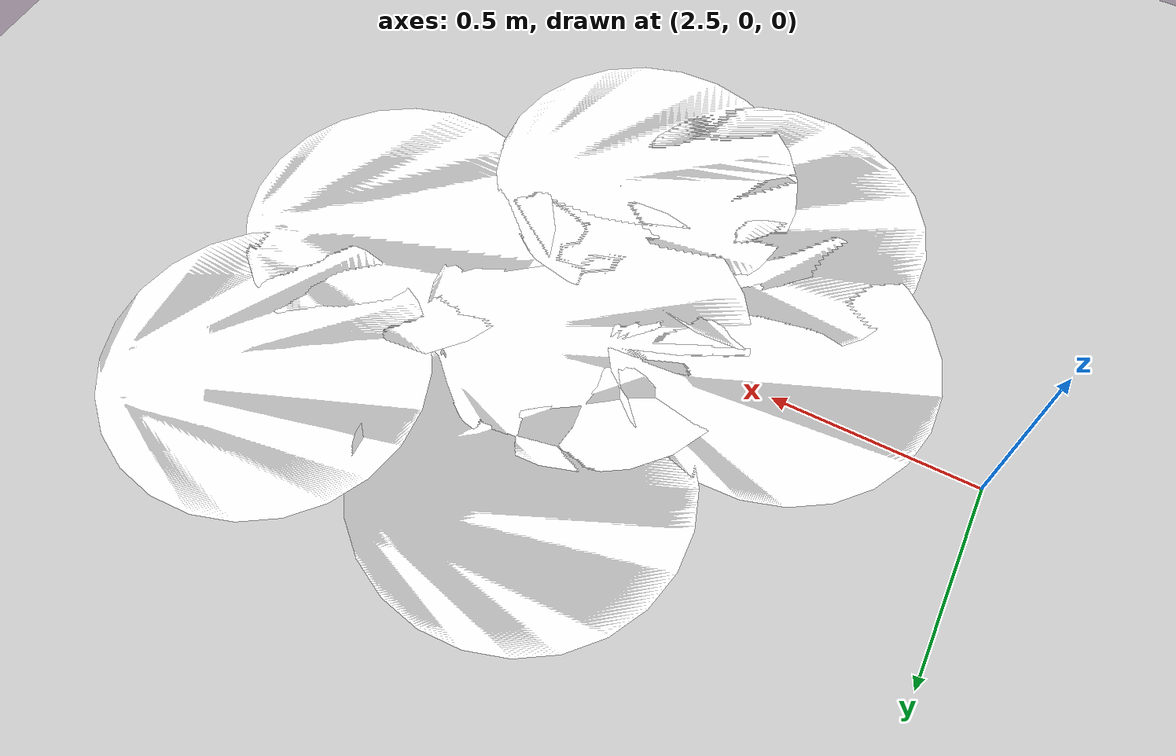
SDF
<sdf version="1.4">
 <world name="default">
  <light name="sun" type="directional">
   <pose>0 0 10 0 -0 0</pose>
   <diffuse>0.8 0.8 0.8 1</diffuse>
   <specular>0.2 0.2 0.2 1</specular>
   <attenuation>
    <range>1000</range>
    <constant>0.9</constant>
    <linear>0.01</linear>
    <quadratic>0.001</quadratic>
   </attenuation>
   <direction>-0.5 0.1 -0.9</direction>
  </light>
  <model name="ground_plane">
   <static>1</static>
   <link name="link">
    <collision name="collision">
     <geometry><plane><normal>0 0 1</normal><size>100 100</size></plane></geometry>
     <surface><friction><ode><mu>100</mu><mu2>50</mu2></ode></friction></surface>
    </collision>
    <visual name="visual">
     <cast_shadows>0</cast_shadows>
     <geometry><plane><normal>0 0 1</normal><size>100 100</size></plane></geometry>
     <material>
      <script><uri>file://media/materials/scripts/gazebo.material</uri><name>Gazebo/Grey</name></script>
     </material>
    </visual>
    <velocity_decay><linear>0</linear><angular>0</angular></velocity_decay>
   </link>
  </model>
  <physics type="ode">
   <max_step_size>0.01</max_step_size>
   <real_time_factor>1</real_time_factor>
   <real_time_update_rate>100</real_time_update_rate>
   <gravity>0 0 -9.8</gravity>
  </physics>
  <scene><ambient>0.4 0.4 0.4 1</ambient><background>0.7 0.7 0.7 1</background><shadows>1</shadows></scene>
  <model name="fogo">
   <static>1</static>
   <link name="chassis">
    <pose>0 0 0.001 0 -0 0</pose>
    <visual name="visual">
     <geometry><mesh><uri>file:///home/dav/.gazebo/models/1fogo/fire_marker.dae</uri></mesh></geometry>
    </visual>
    <velocity_decay><linear>0</linear><angular>0</angular></velocity_decay>
   </link>
   <pose>3.53653 -0.475182 0 0 -0 0</pose>
  </model>
  <model name="fogo_0">
   <static>1</static>
   <link name="chassis">
    <pose>0 0 0.001 0 -0 0</pose>
    <visual name="visual">
     <geometry><mesh><uri>file:///home/dav/.gazebo/models/1fogo/fire_marker.dae</uri></mesh></geometry>
    </visual>
    <velocity_decay><linear>0</linear><angular>0</angular></velocity_decay>
   </link>
   <pose>4.10746 0.47178 0 0 -0 0</pose>
  </model>
  <model name="fogo_1">
   <static>1</static>
   <link name="chassis">
    <pose>0 0 0.001 0 -0 0</pose>
    <visual name="visual">
     <geometry><mesh><uri>file:///home/dav/.gazebo/models/1fogo/fire_marker.dae</uri></mesh></geometry>
    </visual>
    <velocity_decay><linear>0</linear><angular>0</angular></velocity_decay>
   </link>
   <pose>3.19074 -0.483203 0 0 -0 0</pose>
  </model>
  <model name="fogo_2">
   <static>1</static>
   <link name="chassis">
    <pose>0 0 0.001 0 -0 0</pose>
    <visual name="visual">
     <geometry><mesh><uri>file:///home/dav/.gazebo/models/1fogo/fire_marker.dae</uri></mesh></geometry>
    </visual>
    <velocity_decay><linear>0</linear><angular>0</angular></velocity_decay>
   </link>
   <pose>4.03662 -0.040433 0 0 -0 0</pose>
  </model>
  <model name="fogo_3">
   <static>1</static>
   <link name="chassis">
    <pose>0 0 0.001 0 -0 0</pose>
    <visual name="visual">
     <geometry><mesh><uri>file:///home/dav/.gazebo/models/1fogo/fire_marker.dae</uri></mesh></geometry>
    </visual>
    <velocity_decay><linear>0</linear><angular>0</angular></velocity_decay>
   </link>
   <pose>3.04093 -0.119443 0 0 -0 0</pose>
  </model>
  <model name="fogo_4">
   <static>1</static>
   <link name="chassis">
    <pose>0 0 0.001 0 -0 0</pose>
    <visual name="visual">
     <geometry><mesh><uri>file:///home/dav/.gazebo/models/1fogo/fire_marker.dae</uri></mesh></geometry>
    </visual>
    <velocity_decay><linear>0</linear><angular>0</angular></velocity_decay>
   </link>
   <pose>3.42661 0.457509 0 0 -0 0</pose>
  </model>
  <model name="fogo_5">
   <static>1</static>
   <link name="chassis">
    <pose>0 0 0.001 0 -0 0</pose>
    <visual name="visual">
     <geometry><mesh><uri>file:///home/dav/.gazebo/models/1fogo/fire_marker.dae</uri></mesh></geometry>
    </visual>
    <velocity_decay><linear>0</linear><angular>0</angular></velocity_decay>
   </link>
   <pose>3.47531 0.010949 0 0 -0 0</pose>
  </model>
 </world>
</sdf>
